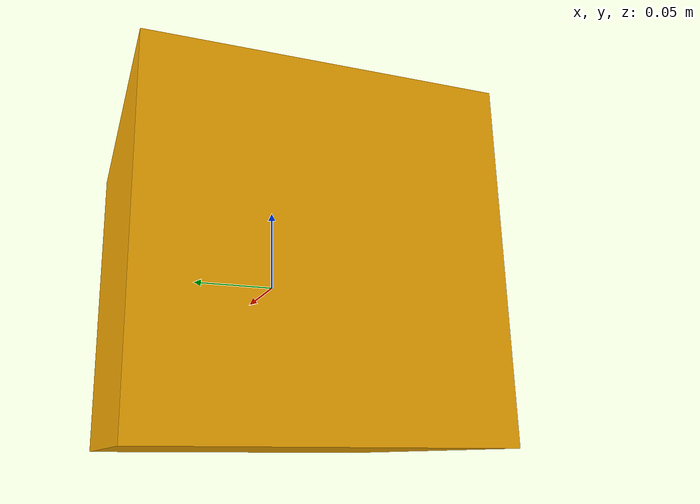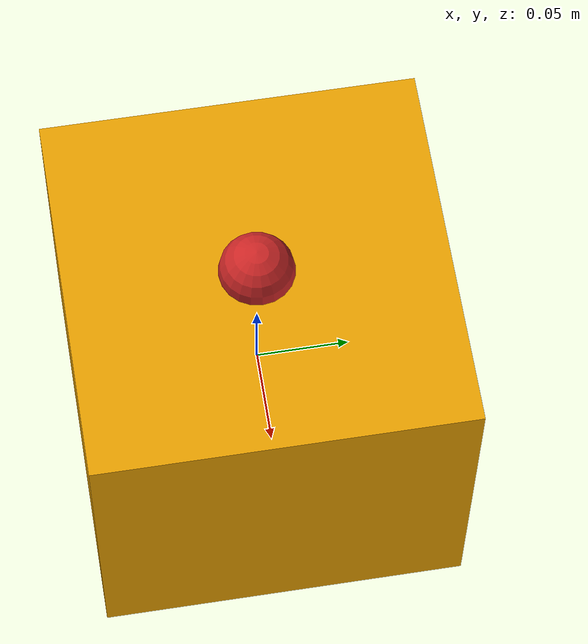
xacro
<?xml version="1.0"?>
<robot name="test_imu_robot" xmlns:xacro="http://ros.org/wiki/xacro">

    <!-- Base link -->
    <link name="base_link">
        <inertial>
            <mass value="1.0"/>
            <inertia ixx="0.1" ixy="0" ixz="0" iyy="0.1" iyz="0" izz="0.1"/>
        </inertial>
        <visual>
            <geometry>
                <box size="0.2 0.2 0.2"/>
            </geometry>
        </visual>
    </link>

    <!-- IMU Link -->
    <link name="imu_link">
        <inertial>
            <mass value="0.01"/>
            <inertia ixx="0.0001" ixy="0" ixz="0" iyy="0.0001" iyz="0" izz="0.0001"/>
        </inertial>
        <visual>
            <geometry>
                <sphere radius="0.02"/>
            </geometry>
            <material name="red"/>
        </visual>
    </link>

    <!-- Fixed joint -->
    <joint name="imu_joint" type="fixed">
        <parent link="base_link"/>
        <child link="imu_link"/>
        <origin xyz="0 0 0.1" rpy="0 0 0"/>
    </joint>

    <!-- Gazebo IMU sensor -->
    <gazebo reference="imu_link">
        <sensor type="imu" name="imu_sensor">
            <always_on>true</always_on>
            <update_rate>100</update_rate>
            <imu>
                <noise>
                    <accel>
                        <gaussian_noise>0.01</gaussian_noise>
                        <model>GAUSSIAN_ACCELERATION</model>
                    </accel>
                    <gyro>
                        <gaussian_noise>0.001</gaussian_noise>
                        <model>GAUSSIAN_ANGULAR_VELOCITY</model>
                    </gyro>
                </noise>
            </imu>
            <plugin name="imu_plugin" filename="libgazebo_ros_imu_sensor.so">
                <topicName>imu/data</topicName>
                <bodyName>imu_link</bodyName>
                <updateRate>100.0</updateRate>
                <gaussianNoise>0.0</gaussianNoise>
                <frameId>imu_link</frameId>
            </plugin>
        </sensor>
    </gazebo>

</robot>
